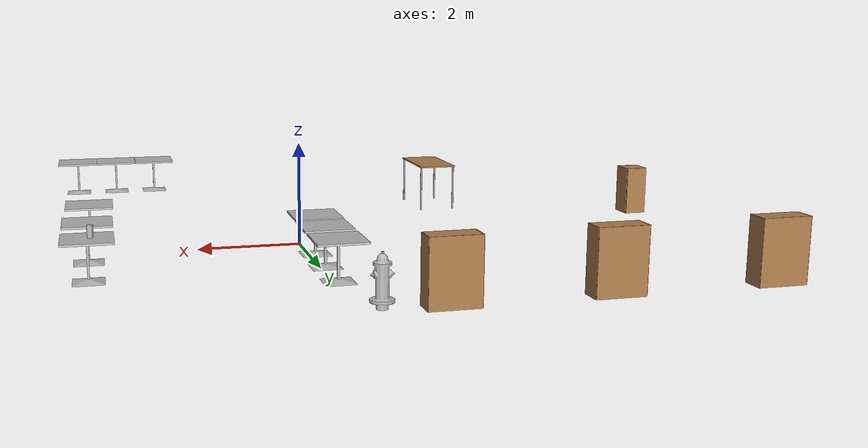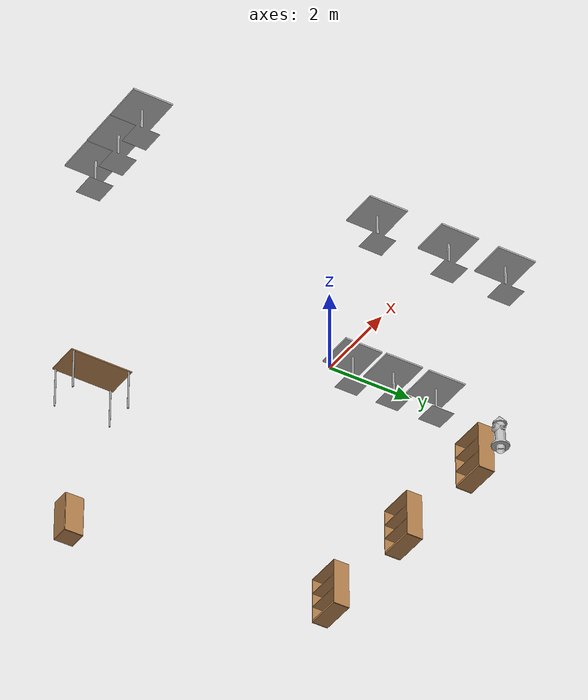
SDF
<?xml version='1.0'?>
<sdf version='1.7'>
  <model name='Project1_layout'>
    <model name='beer'>
      <link name='link1'>
        <pose>0 0 0.115 0 -0 0</pose>
        <inertial>
          <mass>0.39</mass>
          <inertia>
            <ixx>0.00058</ixx>
            <ixy>0</ixy>
            <ixz>0</ixz>
            <iyy>0.00058</iyy>
            <iyz>0</iyz>
            <izz>0.00019</izz>
          </inertia>
        </inertial>
        <collision name='collision'>
          <geometry>
            <cylinder>
              <radius>0.055</radius>
              <length>0.23</length>
            </cylinder>
          </geometry>
        </collision>
        <visual name='visual'>
          <geometry>
            <cylinder>
              <radius>0.055</radius>
              <length>0.23</length>
            </cylinder>
          </geometry>
          <material>
            <script>
              <uri>model://beer/materials/scripts</uri>
              <uri>model://beer/materials/textures</uri>
              <name>Beer/Diffuse</name>
            </script>
          </material>
        </visual>
      </link>
      <pose>3.97025 1.70916 0.719199 0 -0 0</pose>
    </model>
    <model name='bookshelf'>
      <static>1</static>
      <link name='link2'>
        <inertial>
          <mass>1</mass>
        </inertial>
        <collision name='back'>
          <pose>0 0.005 0.6 0 -0 0</pose>
          <geometry>
            <box>
              <size>0.9 0.01 1.2</size>
            </box>
          </geometry>
        </collision>
        <visual name='visual1'>
          <pose>0 0.005 0.6 0 -0 0</pose>
          <geometry>
            <box>
              <size>0.9 0.01 1.2</size>
            </box>
          </geometry>
          <material>
            <script>
              <uri>file://media/materials/scripts/gazebo.material</uri>
              <name>Gazebo/Wood</name>
            </script>
          </material>
        </visual>
        <collision name='left_side'>
          <pose>0.45 -0.195 0.6 0 -0 0</pose>
          <geometry>
            <box>
              <size>0.02 0.4 1.2</size>
            </box>
          </geometry>
        </collision>
        <visual name='visual2'>
          <pose>0.45 -0.195 0.6 0 -0 0</pose>
          <geometry>
            <box>
              <size>0.02 0.4 1.2</size>
            </box>
          </geometry>
          <material>
            <script>
              <uri>file://media/materials/scripts/gazebo.material</uri>
              <name>Gazebo/Wood</name>
            </script>
          </material>
        </visual>
        <collision name='right_side'>
          <pose>-0.45 -0.195 0.6 0 -0 0</pose>
          <geometry>
            <box>
              <size>0.02 0.4 1.2</size>
            </box>
          </geometry>
        </collision>
        <visual name='visual3'>
          <pose>-0.45 -0.195 0.6 0 -0 0</pose>
          <geometry>
            <box>
              <size>0.02 0.4 1.2</size>
            </box>
          </geometry>
          <material>
            <script>
              <uri>file://media/materials/scripts/gazebo.material</uri>
              <name>Gazebo/Wood</name>
            </script>
          </material>
        </visual>
        <collision name='bottom'>
          <pose>0 -0.195 0.03 0 -0 0</pose>
          <geometry>
            <box>
              <size>0.88 0.4 0.06</size>
            </box>
          </geometry>
        </collision>
        <visual name='visual4'>
          <pose>0 -0.195 0.03 0 -0 0</pose>
          <geometry>
            <box>
              <size>0.88 0.4 0.06</size>
            </box>
          </geometry>
          <material>
            <script>
              <uri>file://media/materials/scripts/gazebo.material</uri>
              <name>Gazebo/Wood</name>
            </script>
          </material>
        </visual>
        <collision name='top'>
          <pose>0 -0.195 1.19 0 -0 0</pose>
          <geometry>
            <box>
              <size>0.88 0.4 0.02</size>
            </box>
          </geometry>
        </collision>
        <visual name='visual5'>
          <pose>0 -0.195 1.19 0 -0 0</pose>
          <geometry>
            <box>
              <size>0.88 0.4 0.02</size>
            </box>
          </geometry>
          <material>
            <script>
              <uri>file://media/materials/scripts/gazebo.material</uri>
              <name>Gazebo/Wood</name>
            </script>
          </material>
        </visual>
        <collision name='low_shelf'>
          <pose>0 -0.195 0.43 0 -0 0</pose>
          <geometry>
            <box>
              <size>0.88 0.4 0.02</size>
            </box>
          </geometry>
        </collision>
        <visual name='visual6'>
          <pose>0 -0.195 0.43 0 -0 0</pose>
          <geometry>
            <box>
              <size>0.88 0.4 0.02</size>
            </box>
          </geometry>
          <material>
            <script>
              <uri>file://media/materials/scripts/gazebo.material</uri>
              <name>Gazebo/Wood</name>
            </script>
          </material>
        </visual>
        <collision name='high_shelf'>
          <pose>0 -0.195 0.8 0 -0 0</pose>
          <geometry>
            <box>
              <size>0.88 0.4 0.02</size>
            </box>
          </geometry>
        </collision>
        <visual name='visual7'>
          <pose>0 -0.195 0.8 0 -0 0</pose>
          <geometry>
            <box>
              <size>0.88 0.4 0.02</size>
            </box>
          </geometry>
          <material>
            <script>
              <uri>file://media/materials/scripts/gazebo.material</uri>
              <name>Gazebo/Wood</name>
            </script>
          </material>
        </visual>
      </link>
      <pose>-7.39698 4.8876 -0.049202 0 -0 0</pose>
    </model>
    <model name='bookshelf_clone'>
      <static>1</static>
      <link name='link3'>
        <inertial>
          <mass>1</mass>
        </inertial>
        <collision name='back'>
          <pose>0 0.005 0.6 0 -0 0</pose>
          <geometry>
            <box>
              <size>0.9 0.01 1.2</size>
            </box>
          </geometry>
        </collision>
        <visual name='visual1'>
          <pose>0 0.005 0.6 0 -0 0</pose>
          <geometry>
            <box>
              <size>0.9 0.01 1.2</size>
            </box>
          </geometry>
          <material>
            <script>
              <uri>file://media/materials/scripts/gazebo.material</uri>
              <name>Gazebo/Wood</name>
            </script>
          </material>
        </visual>
        <collision name='left_side'>
          <pose>0.45 -0.195 0.6 0 -0 0</pose>
          <geometry>
            <box>
              <size>0.02 0.4 1.2</size>
            </box>
          </geometry>
        </collision>
        <visual name='visual2'>
          <pose>0.45 -0.195 0.6 0 -0 0</pose>
          <geometry>
            <box>
              <size>0.02 0.4 1.2</size>
            </box>
          </geometry>
          <material>
            <script>
              <uri>file://media/materials/scripts/gazebo.material</uri>
              <name>Gazebo/Wood</name>
            </script>
          </material>
        </visual>
        <collision name='right_side'>
          <pose>-0.45 -0.195 0.6 0 -0 0</pose>
          <geometry>
            <box>
              <size>0.02 0.4 1.2</size>
            </box>
          </geometry>
        </collision>
        <visual name='visual3'>
          <pose>-0.45 -0.195 0.6 0 -0 0</pose>
          <geometry>
            <box>
              <size>0.02 0.4 1.2</size>
            </box>
          </geometry>
          <material>
            <script>
              <uri>file://media/materials/scripts/gazebo.material</uri>
              <name>Gazebo/Wood</name>
            </script>
          </material>
        </visual>
        <collision name='bottom'>
          <pose>0 -0.195 0.03 0 -0 0</pose>
          <geometry>
            <box>
              <size>0.88 0.4 0.06</size>
            </box>
          </geometry>
        </collision>
        <visual name='visual4'>
          <pose>0 -0.195 0.03 0 -0 0</pose>
          <geometry>
            <box>
              <size>0.88 0.4 0.06</size>
            </box>
          </geometry>
          <material>
            <script>
              <uri>file://media/materials/scripts/gazebo.material</uri>
              <name>Gazebo/Wood</name>
            </script>
          </material>
        </visual>
        <collision name='top'>
          <pose>0 -0.195 1.19 0 -0 0</pose>
          <geometry>
            <box>
              <size>0.88 0.4 0.02</size>
            </box>
          </geometry>
        </collision>
        <visual name='visual5'>
          <pose>0 -0.195 1.19 0 -0 0</pose>
          <geometry>
            <box>
              <size>0.88 0.4 0.02</size>
            </box>
          </geometry>
          <material>
            <script>
              <uri>file://media/materials/scripts/gazebo.material</uri>
              <name>Gazebo/Wood</name>
            </script>
          </material>
        </visual>
        <collision name='low_shelf'>
          <pose>0 -0.195 0.43 0 -0 0</pose>
          <geometry>
            <box>
              <size>0.88 0.4 0.02</size>
            </box>
          </geometry>
        </collision>
        <visual name='visual6'>
          <pose>0 -0.195 0.43 0 -0 0</pose>
          <geometry>
            <box>
              <size>0.88 0.4 0.02</size>
            </box>
          </geometry>
          <material>
            <script>
              <uri>file://media/materials/scripts/gazebo.material</uri>
              <name>Gazebo/Wood</name>
            </script>
          </material>
        </visual>
        <collision name='high_shelf'>
          <pose>0 -0.195 0.8 0 -0 0</pose>
          <geometry>
            <box>
              <size>0.88 0.4 0.02</size>
            </box>
          </geometry>
        </collision>
        <visual name='visual7'>
          <pose>0 -0.195 0.8 0 -0 0</pose>
          <geometry>
            <box>
              <size>0.88 0.4 0.02</size>
            </box>
          </geometry>
          <material>
            <script>
              <uri>file://media/materials/scripts/gazebo.material</uri>
              <name>Gazebo/Wood</name>
            </script>
          </material>
        </visual>
      </link>
      <pose>-1.55505 4.88449 -0.049202 0 -0 0</pose>
    </model>
    <model name='bookshelf_clone_clone'>
      <static>1</static>
      <link name='link4'>
        <inertial>
          <mass>1</mass>
        </inertial>
        <collision name='back'>
          <pose>0 0.005 0.6 0 -0 0</pose>
          <geometry>
            <box>
              <size>0.9 0.01 1.2</size>
            </box>
          </geometry>
        </collision>
        <visual name='visual1'>
          <pose>0 0.005 0.6 0 -0 0</pose>
          <geometry>
            <box>
              <size>0.9 0.01 1.2</size>
            </box>
          </geometry>
          <material>
            <script>
              <uri>file://media/materials/scripts/gazebo.material</uri>
              <name>Gazebo/Wood</name>
            </script>
          </material>
        </visual>
        <collision name='left_side'>
          <pose>0.45 -0.195 0.6 0 -0 0</pose>
          <geometry>
            <box>
              <size>0.02 0.4 1.2</size>
            </box>
          </geometry>
        </collision>
        <visual name='visual2'>
          <pose>0.45 -0.195 0.6 0 -0 0</pose>
          <geometry>
            <box>
              <size>0.02 0.4 1.2</size>
            </box>
          </geometry>
          <material>
            <script>
              <uri>file://media/materials/scripts/gazebo.material</uri>
              <name>Gazebo/Wood</name>
            </script>
          </material>
        </visual>
        <collision name='right_side'>
          <pose>-0.45 -0.195 0.6 0 -0 0</pose>
          <geometry>
            <box>
              <size>0.02 0.4 1.2</size>
            </box>
          </geometry>
        </collision>
        <visual name='visual3'>
          <pose>-0.45 -0.195 0.6 0 -0 0</pose>
          <geometry>
            <box>
              <size>0.02 0.4 1.2</size>
            </box>
          </geometry>
          <material>
            <script>
              <uri>file://media/materials/scripts/gazebo.material</uri>
              <name>Gazebo/Wood</name>
            </script>
          </material>
        </visual>
        <collision name='bottom'>
          <pose>0 -0.195 0.03 0 -0 0</pose>
          <geometry>
            <box>
              <size>0.88 0.4 0.06</size>
            </box>
          </geometry>
        </collision>
        <visual name='visual4'>
          <pose>0 -0.195 0.03 0 -0 0</pose>
          <geometry>
            <box>
              <size>0.88 0.4 0.06</size>
            </box>
          </geometry>
          <material>
            <script>
              <uri>file://media/materials/scripts/gazebo.material</uri>
              <name>Gazebo/Wood</name>
            </script>
          </material>
        </visual>
        <collision name='top'>
          <pose>0 -0.195 1.19 0 -0 0</pose>
          <geometry>
            <box>
              <size>0.88 0.4 0.02</size>
            </box>
          </geometry>
        </collision>
        <visual name='visual5'>
          <pose>0 -0.195 1.19 0 -0 0</pose>
          <geometry>
            <box>
              <size>0.88 0.4 0.02</size>
            </box>
          </geometry>
          <material>
            <script>
              <uri>file://media/materials/scripts/gazebo.material</uri>
              <name>Gazebo/Wood</name>
            </script>
          </material>
        </visual>
        <collision name='low_shelf'>
          <pose>0 -0.195 0.43 0 -0 0</pose>
          <geometry>
            <box>
              <size>0.88 0.4 0.02</size>
            </box>
          </geometry>
        </collision>
        <visual name='visual6'>
          <pose>0 -0.195 0.43 0 -0 0</pose>
          <geometry>
            <box>
              <size>0.88 0.4 0.02</size>
            </box>
          </geometry>
          <material>
            <script>
              <uri>file://media/materials/scripts/gazebo.material</uri>
              <name>Gazebo/Wood</name>
            </script>
          </material>
        </visual>
        <collision name='high_shelf'>
          <pose>0 -0.195 0.8 0 -0 0</pose>
          <geometry>
            <box>
              <size>0.88 0.4 0.02</size>
            </box>
          </geometry>
        </collision>
        <visual name='visual7'>
          <pose>0 -0.195 0.8 0 -0 0</pose>
          <geometry>
            <box>
              <size>0.88 0.4 0.02</size>
            </box>
          </geometry>
          <material>
            <script>
              <uri>file://media/materials/scripts/gazebo.material</uri>
              <name>Gazebo/Wood</name>
            </script>
          </material>
        </visual>
      </link>
      <pose>-4.40205 4.88553 -0.049202 0 -0 0</pose>
    </model>
    <model name='cabinet'>
      <static>1</static>
      <link name='cabinet_bottom_plate'>
        <inertial>
          <pose>0 0 -1 0 -0 0</pose>
          <inertia>
            <ixx>2.05</ixx>
            <ixy>0</ixy>
            <ixz>0</ixz>
            <iyy>2.05</iyy>
            <iyz>0</iyz>
            <izz>2.05</izz>
          </inertia>
          <mass>25</mass>
        </inertial>
        <collision name='cabinet_bottom_plate_geom'>
          <pose>0 0 0.01 0 -0 0</pose>
          <geometry>
            <box>
              <size>0.45 0.45 0.02</size>
            </box>
          </geometry>
        </collision>
        <visual name='cabinet_bottom_plate_geom_visual'>
          <pose>0 0 0.01 0 -0 0</pose>
          <geometry>
            <box>
              <size>0.45 0.45 0.02</size>
            </box>
          </geometry>
          <material>
            <script>
              <uri>file://media/materials/scripts/gazebo.material</uri>
              <name>Gazebo/Wood</name>
            </script>
          </material>
        </visual>
        <collision name='cabinet_bottom_plate_geom_cabinet_back_plate'>
          <pose>0.235 0 0.51 0 -0 0</pose>
          <geometry>
            <box>
              <size>0.02 0.45 1.02</size>
            </box>
          </geometry>
        </collision>
        <visual name='cabinet_bottom_plate_geom_cabinet_back_plate_visual'>
          <pose>0.235 0 0.51 0 -0 0</pose>
          <geometry>
            <box>
              <size>0.02 0.45 1.02</size>
            </box>
          </geometry>
          <material>
            <script>
              <uri>file://media/materials/scripts/gazebo.material</uri>
              <name>Gazebo/Wood</name>
            </script>
          </material>
        </visual>
        <collision name='cabinet_bottom_plate_geom_cabinet_left_plate'>
          <pose>0 0.235 0.51 0 -0 0</pose>
          <geometry>
            <box>
              <size>0.45 0.02 1.02</size>
            </box>
          </geometry>
        </collision>
        <visual name='cabinet_bottom_plate_geom_cabinet_left_plate_visual'>
          <pose>0 0.235 0.51 0 -0 0</pose>
          <geometry>
            <box>
              <size>0.45 0.02 1.02</size>
            </box>
          </geometry>
          <material>
            <script>
              <uri>file://media/materials/scripts/gazebo.material</uri>
              <name>Gazebo/Wood</name>
            </script>
          </material>
        </visual>
        <collision name='cabinet_bottom_plate_geom_cabinet_middle_plate'>
          <pose>0 0 0.51 0 -0 0</pose>
          <geometry>
            <box>
              <size>0.45 0.45 0.02</size>
            </box>
          </geometry>
        </collision>
        <visual name='cabinet_bottom_plate_geom_cabinet_middle_plate_visual'>
          <pose>0 0 0.51 0 -0 0</pose>
          <geometry>
            <box>
              <size>0.45 0.45 0.02</size>
            </box>
          </geometry>
          <material>
            <script>
              <uri>file://media/materials/scripts/gazebo.material</uri>
              <name>Gazebo/Wood</name>
            </script>
          </material>
        </visual>
        <collision name='cabinet_bottom_plate_geom_cabinet_right_plate'>
          <pose>0 -0.235 0.51 0 -0 0</pose>
          <geometry>
            <box>
              <size>0.45 0.02 1.02</size>
            </box>
          </geometry>
        </collision>
        <visual name='cabinet_bottom_plate_geom_cabinet_right_plate_visual'>
          <pose>0 -0.235 0.51 0 -0 0</pose>
          <geometry>
            <box>
              <size>0.45 0.02 1.02</size>
            </box>
          </geometry>
          <material>
            <script>
              <uri>file://media/materials/scripts/gazebo.material</uri>
              <name>Gazebo/Wood</name>
            </script>
          </material>
        </visual>
        <collision name='cabinet_bottom_plate_geom_cabinet_top_plate'>
          <pose>0 0 1.01 0 -0 0</pose>
          <geometry>
            <box>
              <size>0.45 0.45 0.02</size>
            </box>
          </geometry>
        </collision>
        <visual name='cabinet_bottom_plate_geom_cabinet_top_plate_visual'>
          <pose>0 0 1.01 0 -0 0</pose>
          <geometry>
            <box>
              <size>0.45 0.45 0.02</size>
            </box>
          </geometry>
          <material>
            <script>
              <uri>file://media/materials/scripts/gazebo.material</uri>
              <name>Gazebo/Wood</name>
            </script>
          </material>
        </visual>
      </link>
      <pose>-8.01525 -1.7139 -0.049202 0 -0 0</pose>
    </model>
    <model name='cafe_table'>
      <static>1</static>
      <link name='link5'>
        <collision name='surface'>
          <pose>0 0 0.755 0 -0 0</pose>
          <geometry>
            <box>
              <size>0.913 0.913 0.04</size>
            </box>
          </geometry>
        </collision>
        <collision name='column'>
          <pose>0 0 0.37 0 -0 0</pose>
          <geometry>
            <box>
              <size>0.042 0.042 0.74</size>
            </box>
          </geometry>
        </collision>
        <collision name='base'>
          <pose>0 0 0.02 0 -0 0</pose>
          <geometry>
            <box>
              <size>0.56 0.56 0.04</size>
            </box>
          </geometry>
        </collision>
        <visual name='visual'>
          <geometry>
            <mesh>
              <uri>model://cafe_table/meshes/cafe_table.dae</uri>
            </mesh>
          </geometry>
        </visual>
      </link>
      <pose>4.26219 -7.1649 -0.049202 0 -0 0</pose>
    </model>
    <model name='cafe_table_0'>
      <static>1</static>
      <link name='link6'>
        <collision name='surface'>
          <pose>0 0 0.755 0 -0 0</pose>
          <geometry>
            <box>
              <size>0.913 0.913 0.04</size>
            </box>
          </geometry>
        </collision>
        <collision name='column'>
          <pose>0 0 0.37 0 -0 0</pose>
          <geometry>
            <box>
              <size>0.042 0.042 0.74</size>
            </box>
          </geometry>
        </collision>
        <collision name='base'>
          <pose>0 0 0.02 0 -0 0</pose>
          <geometry>
            <box>
              <size>0.56 0.56 0.04</size>
            </box>
          </geometry>
        </collision>
        <visual name='visual'>
          <geometry>
            <mesh>
              <uri>model://cafe_table/meshes/cafe_table.dae</uri>
            </mesh>
          </geometry>
        </visual>
      </link>
      <pose>3.99119 -1.37795 -0.049202 0 -0 0</pose>
    </model>
    <model name='cafe_table_0_clone'>
      <static>1</static>
      <link name='link7'>
        <collision name='surface'>
          <pose>0 0 0.755 0 -0 0</pose>
          <geometry>
            <box>
              <size>0.913 0.913 0.04</size>
            </box>
          </geometry>
        </collision>
        <collision name='column'>
          <pose>0 0 0.37 0 -0 0</pose>
          <geometry>
            <box>
              <size>0.042 0.042 0.74</size>
            </box>
          </geometry>
        </collision>
        <collision name='base'>
          <pose>0 0 0.02 0 -0 0</pose>
          <geometry>
            <box>
              <size>0.56 0.56 0.04</size>
            </box>
          </geometry>
        </collision>
        <visual name='visual'>
          <geometry>
            <mesh>
              <uri>model://cafe_table/meshes/cafe_table.dae</uri>
            </mesh>
          </geometry>
        </visual>
      </link>
      <pose>4.02692 0.350013 -0.049202 0 -0 0</pose>
    </model>
    <model name='cafe_table_0_clone_0'>
      <static>1</static>
      <link name='link8'>
        <collision name='surface'>
          <pose>0 0 0.755 0 -0 0</pose>
          <geometry>
            <box>
              <size>0.913 0.913 0.04</size>
            </box>
          </geometry>
        </collision>
        <collision name='column'>
          <pose>0 0 0.37 0 -0 0</pose>
          <geometry>
            <box>
              <size>0.042 0.042 0.74</size>
            </box>
          </geometry>
        </collision>
        <collision name='base'>
          <pose>0 0 0.02 0 -0 0</pose>
          <geometry>
            <box>
              <size>0.56 0.56 0.04</size>
            </box>
          </geometry>
        </collision>
        <visual name='visual'>
          <geometry>
            <mesh>
              <uri>model://cafe_table/meshes/cafe_table.dae</uri>
            </mesh>
          </geometry>
        </visual>
      </link>
      <pose>4.02919 1.75408 -0.049202 0 -0 0</pose>
    </model>
    <model name='cafe_table_0_clone_1'>
      <static>1</static>
      <link name='link9'>
        <collision name='surface'>
          <pose>0 0 0.755 0 -0 0</pose>
          <geometry>
            <box>
              <size>0.913 0.913 0.04</size>
            </box>
          </geometry>
        </collision>
        <collision name='column'>
          <pose>0 0 0.37 0 -0 0</pose>
          <geometry>
            <box>
              <size>0.042 0.042 0.74</size>
            </box>
          </geometry>
        </collision>
        <collision name='base'>
          <pose>0 0 0.02 0 -0 0</pose>
          <geometry>
            <box>
              <size>0.56 0.56 0.04</size>
            </box>
          </geometry>
        </collision>
        <visual name='visual'>
          <geometry>
            <mesh>
              <uri>model://cafe_table/meshes/cafe_table.dae</uri>
            </mesh>
          </geometry>
        </visual>
      </link>
      <pose>-0.171458 0.674063 -0.049202 0 -0 0</pose>
    </model>
    <model name='cafe_table_0_clone_2'>
      <static>1</static>
      <link name='link10'>
        <collision name='surface'>
          <pose>0 0 0.755 0 -0 0</pose>
          <geometry>
            <box>
              <size>0.913 0.913 0.04</size>
            </box>
          </geometry>
        </collision>
        <collision name='column'>
          <pose>0 0 0.37 0 -0 0</pose>
          <geometry>
            <box>
              <size>0.042 0.042 0.74</size>
            </box>
          </geometry>
        </collision>
        <collision name='base'>
          <pose>0 0 0.02 0 -0 0</pose>
          <geometry>
            <box>
              <size>0.56 0.56 0.04</size>
            </box>
          </geometry>
        </collision>
        <visual name='visual'>
          <geometry>
            <mesh>
              <uri>model://cafe_table/meshes/cafe_table.dae</uri>
            </mesh>
          </geometry>
        </visual>
      </link>
      <pose>-0.151819 1.68802 -0.049202 0 -0 0</pose>
    </model>
    <model name='cafe_table_0_clone_3'>
      <static>1</static>
      <link name='link11'>
        <collision name='surface'>
          <pose>0 0 0.755 0 -0 0</pose>
          <geometry>
            <box>
              <size>0.913 0.913 0.04</size>
            </box>
          </geometry>
        </collision>
        <collision name='column'>
          <pose>0 0 0.37 0 -0 0</pose>
          <geometry>
            <box>
              <size>0.042 0.042 0.74</size>
            </box>
          </geometry>
        </collision>
        <collision name='base'>
          <pose>0 0 0.02 0 -0 0</pose>
          <geometry>
            <box>
              <size>0.56 0.56 0.04</size>
            </box>
          </geometry>
        </collision>
        <visual name='visual'>
          <geometry>
            <mesh>
              <uri>model://cafe_table/meshes/cafe_table.dae</uri>
            </mesh>
          </geometry>
        </visual>
      </link>
      <pose>-0.149959 2.76676 -0.049202 0 -0 0</pose>
    </model>
    <model name='cafe_table_clone'>
      <static>1</static>
      <link name='link12'>
        <collision name='surface'>
          <pose>0 0 0.755 0 -0 0</pose>
          <geometry>
            <box>
              <size>0.913 0.913 0.04</size>
            </box>
          </geometry>
        </collision>
        <collision name='column'>
          <pose>0 0 0.37 0 -0 0</pose>
          <geometry>
            <box>
              <size>0.042 0.042 0.74</size>
            </box>
          </geometry>
        </collision>
        <collision name='base'>
          <pose>0 0 0.02 0 -0 0</pose>
          <geometry>
            <box>
              <size>0.56 0.56 0.04</size>
            </box>
          </geometry>
        </collision>
        <visual name='visual'>
          <geometry>
            <mesh>
              <uri>model://cafe_table/meshes/cafe_table.dae</uri>
            </mesh>
          </geometry>
        </visual>
      </link>
      <pose>3.34341 -7.16603 -0.049202 0 -0 0</pose>
    </model>
    <model name='cafe_table_clone_clone'>
      <static>1</static>
      <link name='link13'>
        <collision name='surface'>
          <pose>0 0 0.755 0 -0 0</pose>
          <geometry>
            <box>
              <size>0.913 0.913 0.04</size>
            </box>
          </geometry>
        </collision>
        <collision name='column'>
          <pose>0 0 0.37 0 -0 0</pose>
          <geometry>
            <box>
              <size>0.042 0.042 0.74</size>
            </box>
          </geometry>
        </collision>
        <collision name='base'>
          <pose>0 0 0.02 0 -0 0</pose>
          <geometry>
            <box>
              <size>0.56 0.56 0.04</size>
            </box>
          </geometry>
        </collision>
        <visual name='visual'>
          <geometry>
            <mesh>
              <uri>model://cafe_table/meshes/cafe_table.dae</uri>
            </mesh>
          </geometry>
        </visual>
      </link>
      <pose>2.41565 -7.15771 -0.049202 0 -0 0</pose>
    </model>
    <model name='fire_hydrant'>
      <static>1</static>
      <link name='link14'>
        <collision name='collision'>
          <geometry>
            <mesh>
              <uri>model://fire_hydrant/meshes/fire_hydrant.dae</uri>
            </mesh>
          </geometry>
        </collision>
        <visual name='visual'>
          <geometry>
            <mesh>
              <uri>model://fire_hydrant/meshes/fire_hydrant.dae</uri>
            </mesh>
          </geometry>
        </visual>
      </link>
      <pose>-0.437818 4.60469 -0.028194 0 -0 0</pose>
    </model>
    <model name='table'>
      <static>1</static>
      <link name='link15'>
        <collision name='surface'>
          <pose>0 0 1 0 -0 0</pose>
          <geometry>
            <box>
              <size>1.5 0.8 0.03</size>
            </box>
          </geometry>
          <surface>
            <friction>
              <ode>
                <mu>0.6</mu>
                <mu2>0.6</mu2>
              </ode>
            </friction>
          </surface>
        </collision>
        <visual name='visual1'>
          <pose>0 0 1 0 -0 0</pose>
          <geometry>
            <box>
              <size>1.5 0.8 0.03</size>
            </box>
          </geometry>
          <material>
            <script>
              <uri>file://media/materials/scripts/gazebo.material</uri>
              <name>Gazebo/Wood</name>
            </script>
          </material>
        </visual>
        <collision name='front_left_leg'>
          <pose>0.68 0.38 0.5 0 -0 0</pose>
          <geometry>
            <cylinder>
              <radius>0.02</radius>
              <length>1</length>
            </cylinder>
          </geometry>
        </collision>
        <visual name='front_left_leg'>
          <pose>0.68 0.38 0.5 0 -0 0</pose>
          <geometry>
            <cylinder>
              <radius>0.02</radius>
              <length>1</length>
            </cylinder>
          </geometry>
          <material>
            <script>
              <uri>file://media/materials/scripts/gazebo.material</uri>
              <name>Gazebo/Grey</name>
            </script>
          </material>
        </visual>
        <collision name='front_right_leg'>
          <pose>0.68 -0.38 0.5 0 -0 0</pose>
          <geometry>
            <cylinder>
              <radius>0.02</radius>
              <length>1</length>
            </cylinder>
          </geometry>
        </collision>
        <visual name='front_right_leg'>
          <pose>0.68 -0.38 0.5 0 -0 0</pose>
          <geometry>
            <cylinder>
              <radius>0.02</radius>
              <length>1</length>
            </cylinder>
          </geometry>
          <material>
            <script>
              <uri>file://media/materials/scripts/gazebo.material</uri>
              <name>Gazebo/Grey</name>
            </script>
          </material>
        </visual>
        <collision name='back_right_leg'>
          <pose>-0.68 -0.38 0.5 0 -0 0</pose>
          <geometry>
            <cylinder>
              <radius>0.02</radius>
              <length>1</length>
            </cylinder>
          </geometry>
        </collision>
        <visual name='back_right_leg'>
          <pose>-0.68 -0.38 0.5 0 -0 0</pose>
          <geometry>
            <cylinder>
              <radius>0.02</radius>
              <length>1</length>
            </cylinder>
          </geometry>
          <material>
            <script>
              <uri>file://media/materials/scripts/gazebo.material</uri>
              <name>Gazebo/Grey</name>
            </script>
          </material>
        </visual>
        <collision name='back_left_leg'>
          <pose>-0.68 0.38 0.5 0 -0 0</pose>
          <geometry>
            <cylinder>
              <radius>0.02</radius>
              <length>1</length>
            </cylinder>
          </geometry>
        </collision>
        <visual name='back_left_leg'>
          <pose>-0.68 0.38 0.5 0 -0 0</pose>
          <geometry>
            <cylinder>
              <radius>0.02</radius>
              <length>1</length>
            </cylinder>
          </geometry>
          <material>
            <script>
              <uri>file://media/materials/scripts/gazebo.material</uri>
              <name>Gazebo/Grey</name>
            </script>
          </material>
        </visual>
      </link>
      <pose>-3.75841 -3.62392 -0.051381 0 0 -1.56371</pose>
    </model>
    <static>0</static>
    <allow_auto_disable>1</allow_auto_disable>
  </model>
</sdf>
